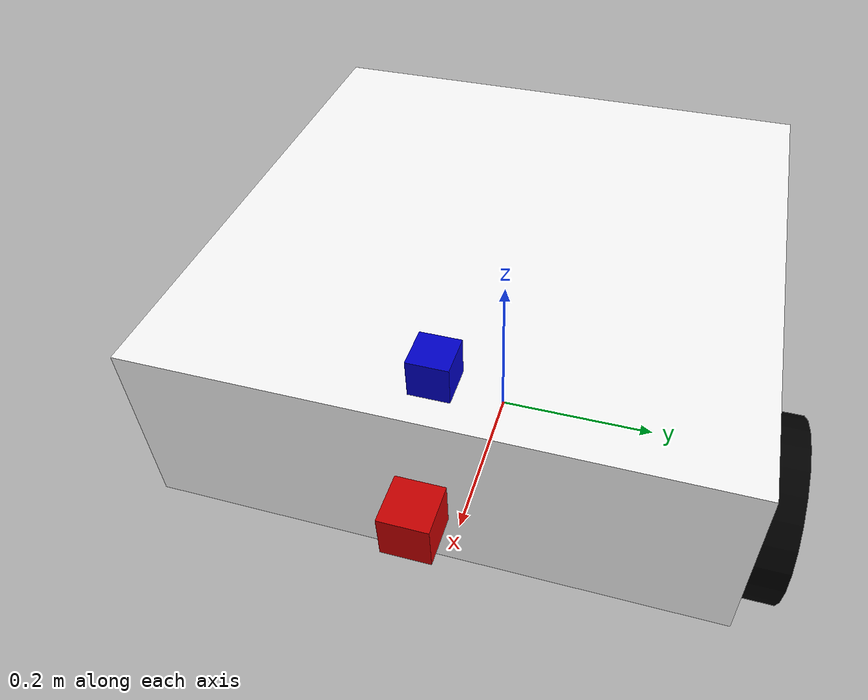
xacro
<?xml version='1.0'?>
<robot name="robot" xmlns:xacro="http://www.ros.org/wiki/xacro">
  <xacro:include filename="$(find ros_project_scene)/urdf/materials.xacro" />
  <xacro:include filename="$(find ros_project_scene)/urdf/robot_model.gazebo" />
  <xacro:include filename="$(find ros_project_scene)/urdf/wheel.xacro" />
  <xacro:include filename="$(find ros_project_scene)/urdf/inertial.xacro" />

  <link name='base_link'>
    <visual name='base_visual'>
      <origin xyz="0.0 0.0 0.2" rpy="0.0 0.0 0.0"/>
      <geometry><box size="0.6 0.6 0.2"/></geometry>
      <material name="white"/>
    </visual>
    <xacro:inertial_box mass="1.0" x="0.6" y="0.6" z="0.2">
      <origin xyz="0 0 0.2" rpy="0 0 0"/>
    </xacro:inertial_box>
    <collision>
      <origin xyz="0 0 0.2" rpy="0 0 0"/>
      <geometry><box size="0.6 0.6 0.2"/></geometry>
    </collision>
    <collision name='caster_collision'>
      <origin xyz="-0.25 0 0.1" rpy="0 0 0"/>
      <geometry><sphere radius="0.1"/></geometry>
      <surface>
        <friction>
          <ode><mu>0</mu><mu2>0</mu2></ode>
        </friction>
      </surface>
    </collision>
    <visual name='caster_visual'>
      <origin xyz="-0.25 0.0 0.1" rpy="0.0 0.0 0.0"/>
      <geometry><sphere radius="0.1"/></geometry>
      <material name="white"/>
    </visual>
  </link>

  <xacro:wheel side="left"  x="0.15" y="0.325" z="0.1"/>
  <xacro:wheel side="right" x="0.15" y="-0.325" z="0.1"/>

  <link name="camera_link">
    <visual><geometry><box size="0.04 0.04 0.04"/></geometry><material name="blue"/></visual>
    <collision><geometry><box size="0.04 0.04 0.04"/></geometry></collision>
    <inertial><mass value="0.1"/><inertia ixx="1e-3" ixy="0" ixz="0" iyy="1e-3" iyz="0" izz="1e-3"/></inertial>
  </link>
  <joint name="camera_joint" type="fixed">
    <parent link="base_link"/>
    <child link="camera_link"/>
    <origin xyz="0.25 0.0 0.32" rpy="0 -1.578 0"/>
  </joint>
  <gazebo reference="camera_link">
    <sensor name="camera" type="camera">
      <pose>0 0 0 0 0 0</pose>
      <visualize>true</visualize>
      <update_rate>10</update_rate>
      <camera>
        <horizontal_fov>1.089</horizontal_fov>
        <image><width>640</width><height>480</height><format>R8G8B8</format></image>
        <clip><near>0.05</near><far>8.0</far></clip>
      </camera>
      <topic>camera/image_raw</topic>
    </sensor>
  </gazebo>

  <link name="lidar_link">
    <visual><geometry><box size="0.05 0.05 0.05"/></geometry><material name="red"/></visual>
    <collision><geometry><box size="0.05 0.05 0.05"/></geometry></collision>
    <inertial><mass value="0.1"/><inertia ixx="1e-3" ixy="0" ixz="0" iyy="1e-3" iyz="0" izz="1e-3"/></inertial>
  </link>
  <joint name="lidar_joint" type="fixed">
    <parent link="base_link"/>
    <child link="lidar_link"/>
    <origin xyz="0.33 0 0.2" rpy="0 0 0"/>
  </joint>
  <gazebo reference="lidar_link">
    <sensor name="gpu_lidar" type="gpu_lidar">
      <pose>0 0 0 0 0 0</pose>
      <topic>scan</topic>
      <update_rate>10</update_rate>
      <lidar>
  <scan>
    <horizontal>
      <samples>720</samples>
      <min_angle>-1.5708</min_angle>
      <max_angle>1.5708</max_angle>
    </horizontal>
  </scan>
  <range>
    <min>0.08</min>
    <max>10.0</max>
  </range>
</lidar>
      <visualize>true</visualize>
    </sensor>
  </gazebo>
</robot>

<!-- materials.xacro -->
<robot>
  <material name="black">
    <color rgba="0.0 0.0 0.0 1.0"/>
  </material>
  <material name="blue">
    <color rgba="0.0 0.0 0.8 1.0"/>
  </material>
  <material name="green">
    <color rgba="${30/255} ${255/255} ${30/255} 1.0"/>
  </material>
  <material name="grey">
    <color rgba="0.2 0.2 0.2 1.0"/>
  </material>
  <material name="orange">
    <color rgba="${255/255} ${108/255} ${10/255} 1.0"/>
  </material>
  <material name="brown">
    <color rgba="${222/255} ${207/255} ${195/255} 1.0"/>
  </material>
  <material name="red">
    <color rgba="0.8 0.0 0.0 1.0"/>
  </material>
  <material name="white">
    <color rgba="1.0 1.0 1.0 1.0"/>
  </material>
</robot>

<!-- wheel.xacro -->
<robot name="diff_drive" xmlns:xacro="http://www.ros.org/wiki/xacro">
  <xacro:macro name="wheel" params="side x y z">
    <link name='wheel_${side}'>
      <visual name='wheel_${side}_visual'>
        <origin xyz="0 0 0" rpy="0 0 0"/>
        <geometry>
          <cylinder length="0.05" radius="0.1"/>
        </geometry>
        <material name="black"/>
      </visual>
      <xacro:inertial_cylinder mass="0.1" length="0.05" radius="0.1">
        <origin xyz="0 0 0" rpy="0 0 0"/>
      </xacro:inertial_cylinder>
      <collision>
        <origin xyz="0 0 0" rpy="0 0 0"/>
        <geometry>
          <cylinder radius="0.1" length="0.05"/>
        </geometry>
      </collision>
    </link>
    <joint name="wheel_${side}_joint" type="continuous">
      <origin xyz="${x} ${y} ${z}" rpy="${-pi/2} 0 0"/>
      <parent link="base_link"/>
      <child link="wheel_${side}"/>
      <axis xyz="0 0 1"/>
      <limit effort="50" velocity="100"/>
    </joint>
  </xacro:macro>
</robot>

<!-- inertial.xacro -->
<robot xmlns:xacro="http://www.ros.org/wiki/xacro">

  <xacro:macro name="inertial_sphere" params="mass radius *origin">
    <inertial>
      <xacro:insert_block name="origin"/>
      <mass value="${mass}" />
      <inertia ixx="${(2/5) * mass * (radius*radius)}" ixy="0.0" ixz="0.0"
               iyy="${(2/5) * mass * (radius*radius)}" iyz="0.0"
               izz="${(2/5) * mass * (radius*radius)}" />
    </inertial>
  </xacro:macro>

  <xacro:macro name="inertial_box" params="mass x y z *origin">
    <inertial>
      <xacro:insert_block name="origin"/>
      <mass value="${mass}" />
      <inertia ixx="${(1/12) * mass * (y*y+z*z)}" ixy="0.0" ixz="0.0"
               iyy="${(1/12) * mass * (x*x+z*z)}" iyz="0.0"
               izz="${(1/12) * mass * (x*x+y*y)}" />
    </inertial>
  </xacro:macro>

  <xacro:macro name="inertial_cylinder" params="mass length radius *origin">
    <inertial>
      <xacro:insert_block name="origin"/>
      <mass value="${mass}" />
      <inertia ixx="${(1/12) * mass * (3*radius*radius + length*length)}" ixy="0.0" ixz="0.0"
               iyy="${(1/12) * mass * (3*radius*radius + length*length)}" iyz="0.0"
               izz="${(1/2) * mass * (radius*radius)}" />
    </inertial>
  </xacro:macro>

</robot>
